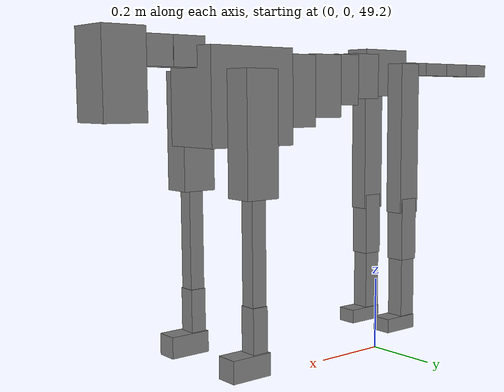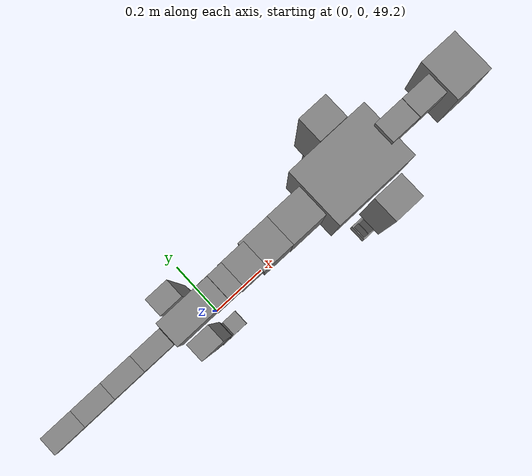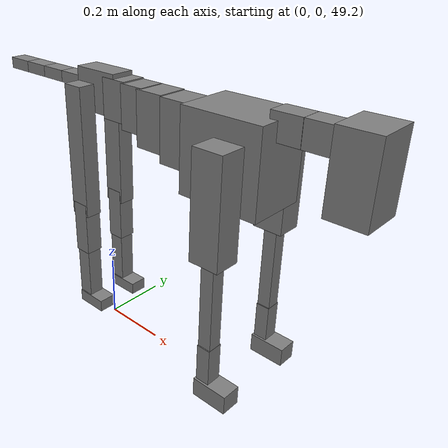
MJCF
<mujoco model="dog">

    <default>
        <joint armature="0.02" stiffness="1" damping="0.2" limited="true"/>
        <geom condim="3" friction="1 0.05 0.05" margin="0.01"/>
        <motor ctrllimited="true" ctrlrange="-1.0 1.0" forcelimited="true" gear="50"/>
    </default>

    <compiler inertiafromgeom="true" angle="radian"/>

    <option timestep="0.016" iterations="50" tolerance="1e-10" solver="Newton" jacobian="dense" cone="pyramidal"/>

    <size nconmax="20000" njmax="60000" nstack="5000000"/>
    <visual>
        <map force="0.1" zfar="30"/>
        <rgba haze="0.15 0.25 0.35 1"/>
        <quality shadowsize="2048"/>
        <global offwidth="800" offheight="800"/>
    </visual>

    <asset>
        <texture type="skybox" builtin="gradient" rgb1="0.3 0.5 0.7" rgb2="0 0 0" width="512" height="512"/>
        <texture name="texplane" type="2d" builtin="checker" rgb1=".2 .3 .4" rgb2=".1 0.15 0.2" width="512" height="512"
                 mark="cross" markrgb=".8 .8 .8"/>
        <texture name="texgeom" type="cube" builtin="flat" mark="cross" width="127" height="1278" rgb1="0.8 0.6 0.4"
                 rgb2="0.8 0.6 0.4" markrgb="1 1 1" random="0.01"/>

        <material name="matplane" reflectance="0.3" texture="texplane" texrepeat="1 1" texuniform="true"/>
        <material name="matgeom" texture="texgeom" texuniform="true" rgba="0.8 0.6 .4 1"/>
    </asset>

    <worldbody>
        <geom name="floor" pos="0 0 0" size="0 0 .25" type="plane" material="matplane" condim="3"/>

        <light directional="false" diffuse=".2 .2 .2" specular="0 0 0" pos="0 0 5" dir="0 0 -1" castshadow="false"/>
        <light mode="targetbodycom" target="torso" directional="false" diffuse=".8 .8 .8" specular="0.3 0.3 0.3"
               pos="0 0 4.0" dir="0 0 -1"/>

        <body name="root" pos="0 0 50">
            <freejoint name="root_1"/>
            <geom type="box" pos="0 0 -0.02" size="0.0774  0.0358  0.063" density="2030"/>

            <body name="spine1" pos="0.054 0 0">
                <joint name="spine1_y" axis="0 1 0" range="0 0.7" limited="true"/>
                <geom type="box" pos="0.02375 0 -0.03" size="0.04375  0.0375  0.05985" density="2030"/>

                <body name="spine2" pos="0.0612 0 0">
                    <joint name="spine2_y" axis="0 1 0" range="-0.15 0.15" limited="true"/>
                    <geom type="box" pos="0.03555  0  -0.04" size="0.04055  0.039  0.06615" density="2030"/>

                    <body name="spine3" pos="0.0730 0 0">
                        <joint name="spine3_y" axis="0 1 0" range="-0.15 0.15" limited="true"/>
                        <geom type="box" pos="0.03555  0  -0.057" size="0.04555  0.0445  0.081" density="2030"/>

                        <body name="spine4" pos="0.0780 0 0">
                            <joint name="spine4_y" axis="0 1 0" range="-0.15 0.15" limited="true"/>
                            <geom type="box" pos="0.05265  0  -0.07" size="0.05265  0.045  0.09135" density="2030"/>

                            <body name="torso" pos="0.1082 0 0">
                                <joint name="torso_y" axis="0 1 0" range="-0.15 0.15" limited="true"/>
                                <geom type="box" pos="0.11925  0  -0.085" size="0.11925  0.085  0.11745"
                                      density="2030"/>

                                <body name="neck1" pos="0.2160  0   0.0180">
                                    <joint name="neck1_y" axis="0 1 0" range="-1.2  -1" limited="true"/>
                                    <geom type="box" pos="0.0423  0  0" size="0.0423  0.03  0.036" density="2325"/>

                                    <body name="neck2" pos="0.0853  0  0">
                                        <joint name="neck2_y" axis="0 1 0" range="0.1  0" limited="true"/>
                                        <geom type="box" pos="0.0423  0  0" size="0.0423  0.03  0.036" density="2325"/>

                                        <body name="head" pos="0.0853  0  0">
                                            <joint name="head_y" axis="0 1 0" range="-0.3  -0.2" limited="true"/>
                                            <geom type="box" pos="0.0531  0  -0.055" size="0.0531  0.06  0.1044"
                                                  density="4030"/>

                                        </body>
                                    </body>
                                </body>

                                <body name="front_shoulder" pos="0.156  0   -0.0480">
                                    <joint name="front_shoulder_y" axis="0 1 0" range="-1 1.5" limited="true"/>
                                    <geom type="box" pos="0 0.13 -0.1218" size="0.0441  0.0377  0.1485" density="1158"/>
                                    <geom type="box" pos="0 -0.13 -0.1218" size="0.0441  0.0377  0.1485"
                                          density="1158"/>

                                    <body name="front_elbow" pos="0  0  -0.2437">
                                        <joint name="front_elbow_y" axis="0 1 0" range="-2 0" limited="true"/>
                                        <geom type="box" pos="0 0.13 -0.1461" size="0.0195  0.0200  0.1461"
                                              density="1081"/>
                                        <geom type="box" pos="0 -0.13 -0.1461" size="0.0195  0.0200  0.1461"
                                              density="1081"/>

                                        <body name="front_wrist" pos="0  0  -0.2922">
                                            <joint name="front_wrist_y" axis="0 1 0" range="-0.2 0" limited="true"/>
                                            <geom type="box" pos="0 0.13 -0.0564" size="0.0205  0.0228  0.0695"
                                                  density="1664"/>
                                            <geom type="box" pos="0 -0.13 -0.0564" size="0.0205  0.0228  0.0695"
                                                  density="1664"/>

                                            <body name="front_finger_end" pos="0  0  -0.1127">
                                                <joint name="front_finger_y" axis="0 1 0" range="-0.4 1"
                                                       limited="true"/>
                                                <geom type="box" pos="0.0290  0.13  -0.0127"
                                                      size="0.0532  0.0290  0.0277" density="1515"/>
                                                <geom type="box" pos="0.0290  -0.13  -0.0127"
                                                      size="0.0532  0.0290  0.0277" density="1515"/>

                                            </body>

                                        </body>
                                    </body>
                                </body>

                            </body>
                        </body>
                    </body>
                </body>
            </body>

            <body name="back_hip" pos="-0.03 0 -0.018">
                <joint name="back_hip_y" axis="0 1 0" range="-1.5 0.3" limited="true"/>
                <geom type="box" pos="0 0.07 -0.1807" size="0.0333  0.0261  0.2035" density="1154"/>
                <geom type="box" pos="0 -0.07 -0.1807" size="0.0333  0.0261  0.2035" density="1154"/>

                <body name="back_knee" pos="0  0  -0.3614">
                    <joint name="back_knee_y" axis="0 1 0" range="0 2.8" limited="true"/>
                    <geom type="box" pos="0 0.07 -0.0692" size="0.0273  0.0269  0.0847" density="1227"/>
                    <geom type="box" pos="0 -0.07 -0.0692" size="0.0273  0.0269  0.0847" density="1227"/>

                    <body name="back_ankle" pos="0  0  -0.1383">
                        <joint name="back_ankle_y" axis="0 1 0" range="-2.2 0" limited="true"/>
                        <geom type="box" pos="0 0.07 -0.0949" size="0.0243  0.0243  0.1061" density="1284"/>
                        <geom type="box" pos="0 -0.07 -0.0949" size="0.0243  0.0243  0.1061" density="1284"/>

                        <body name="back_toe_end" pos="0  0  -0.1898">
                            <joint name="back_toe_y" axis="0 1 0" range="-0.4 1" limited="true"/>
                            <geom type="box" pos="0.0276  0.07  -0.0040" size="0.0505  0.0276  0.0190" density="1515"/>
                            <geom type="box" pos="0.0276  -0.07  -0.0040" size="0.0505  0.0276  0.0190" density="1515"/>

                        </body>
                    </body>
                </body>
            </body>

            <body name="tail1" pos="-0.074 0 -0.006">
                <joint name="tail1_y" axis="0 1 0" range="-0.2 0.2" limited="true"/>
                <geom type="box" pos="-0.0536  0  0" size="0.045  0.025  0.0175" density="1587"/>

                <body name="tail2" pos="-0.09 0 0">
                    <joint name="tail2_y" axis="0 1 0" range="-0.2 0.2" limited="true"/>
                    <geom type="box" pos="-0.0536  0  0" size="0.045  0.025  0.0175" density="1587"/>

                    <body name="tail3" pos="-0.09 0 0">
                        <joint name="tail3_y" axis="0 1 0" range="-0.2 0.2" limited="true"/>
                        <geom type="box" pos="-0.0536  0  0" size="0.045  0.025  0.0175" density="1587"/>

                        <body name="tail4" pos="-0.09 0 0">
                            <joint name="tail4_y" axis="0 1 0" range="-0.2 0.2" limited="true"/>
                            <geom type="box" pos="-0.0536  0  0" size="0.045  0.025  0.0175" density="1587"/>

                        </body>
                    </body>
                </body>
            </body>
        </body>
    </worldbody>

    <actuator>
        <motor joint="spine1_y" forcerange="-150 150     "/>
        <motor joint="spine2_y" forcerange="-150 150     "/>
        <motor joint="spine3_y" forcerange="-150 150     "/>
        <motor joint="spine4_y" forcerange="-150 150     "/>
        <motor joint="torso_y" forcerange="-150 150     "/>
        <motor joint="neck1_y" forcerange="-100 100       "/>
        <motor joint="neck2_y" forcerange="-100 100       "/>
        <motor joint="head_y" forcerange="-150 150       "/>
        <motor joint="front_shoulder_y" forcerange="-159.97 191.50"/>
        <motor joint="front_elbow_y" forcerange="-119.71 125.41"/>
        <motor joint="front_wrist_y" forcerange="-61.85 120.35"/>
        <motor joint="front_finger_y" forcerange="-52.06 62.72"/>
        <motor joint="back_hip_y" forcerange="-262.23 286.35"/>
        <motor joint="back_knee_y" forcerange="-259.25 332.71"/>
        <motor joint="back_angle_y" forcerange="-62.91 225.30"/>
        <motor joint="back_toe_y" forcerange="-41.77 98.70"/>
        <motor joint="tail1_y" forcerange="-50 50     "/>
        <motor joint="tail2_y" forcerange="-50 50     "/>
        <motor joint="tail3_y" forcerange="-50 50     "/>
        <motor joint="tail4_y" forcerange="-50 50     "/>
    </actuator>
</mujoco>
